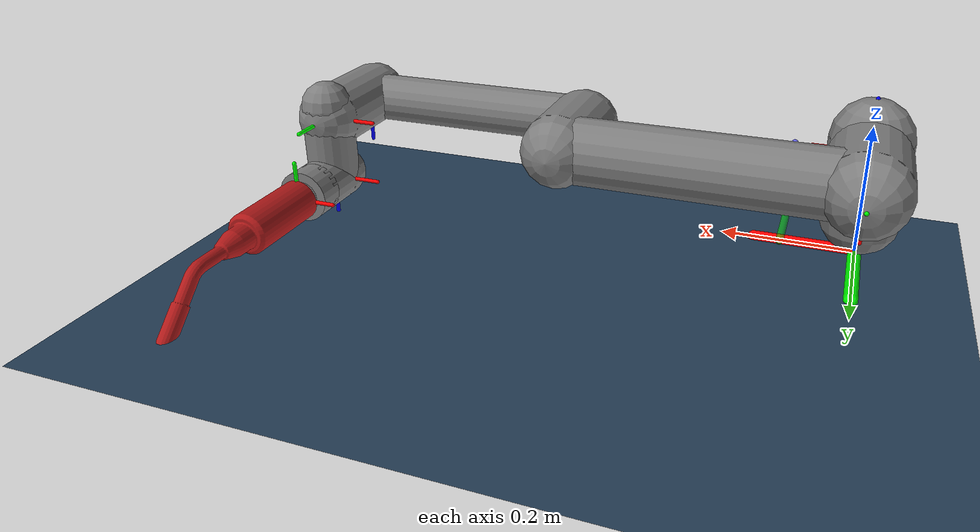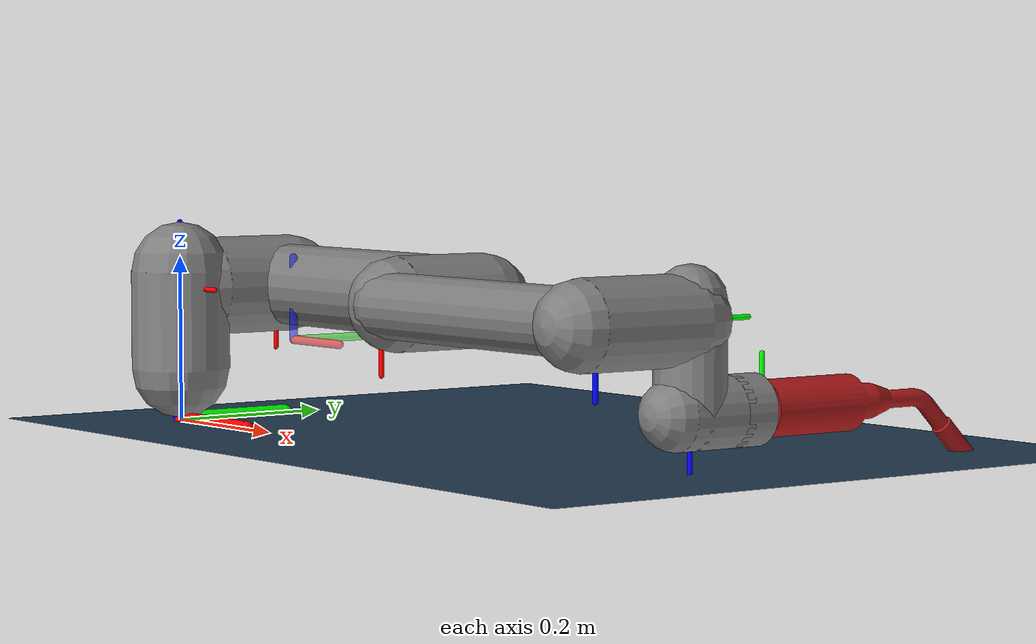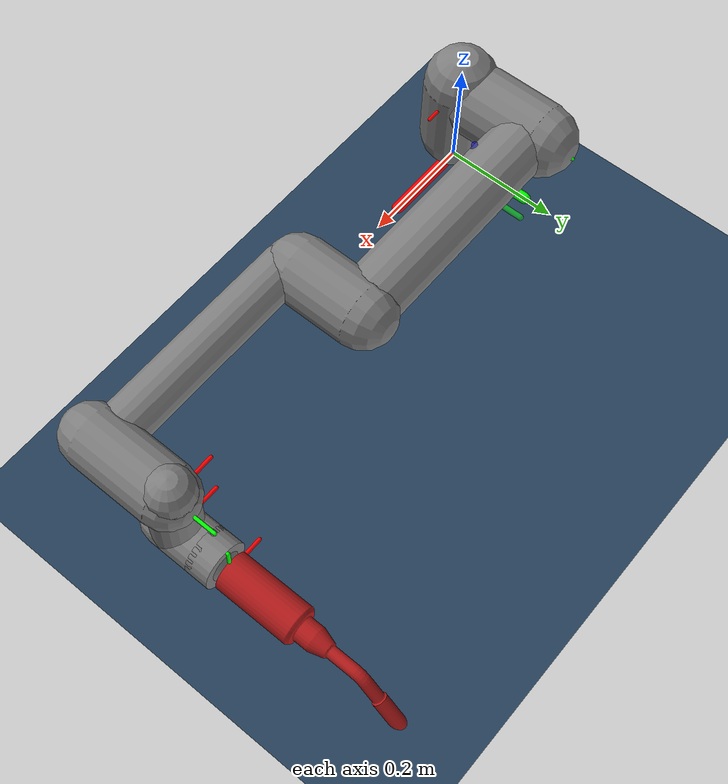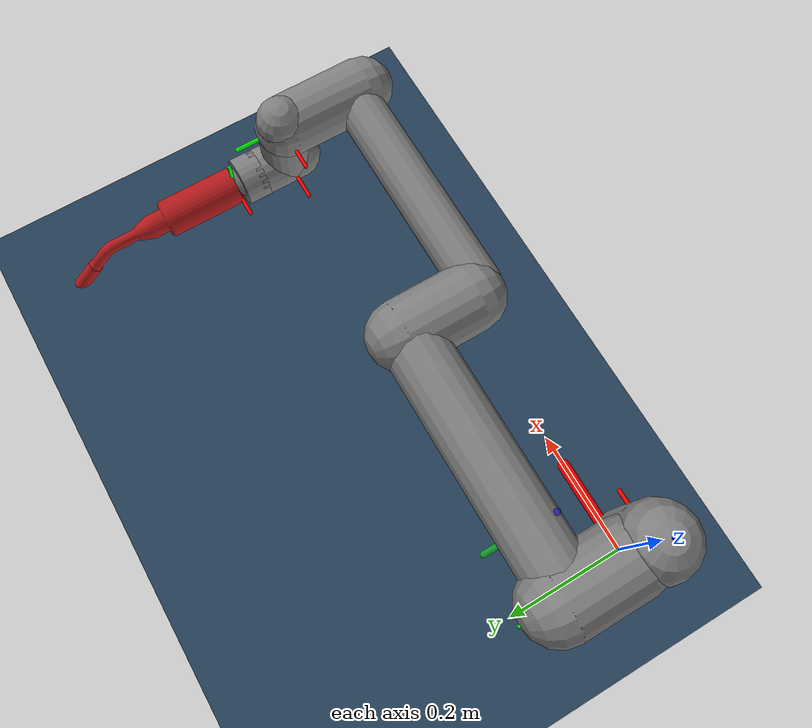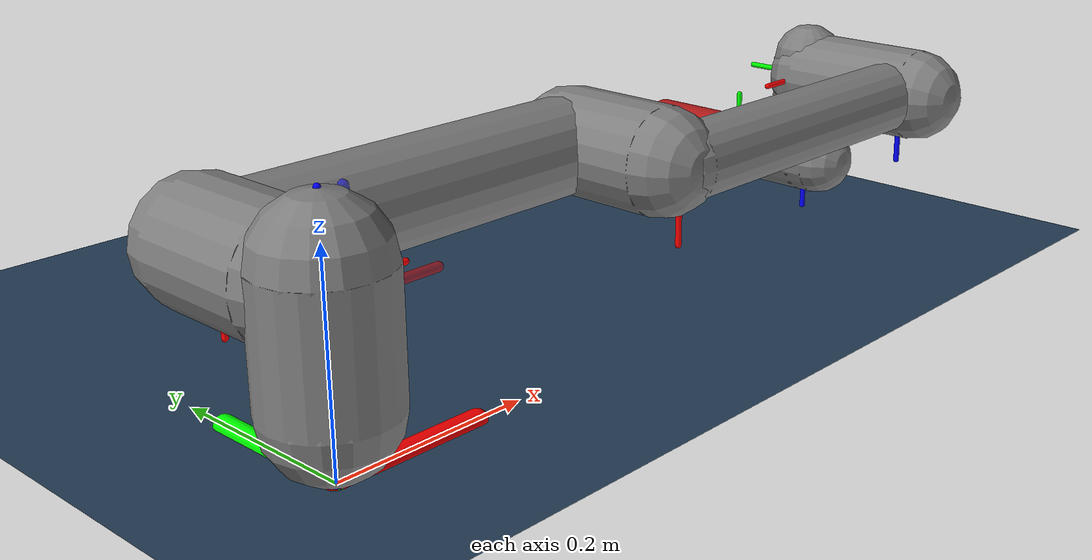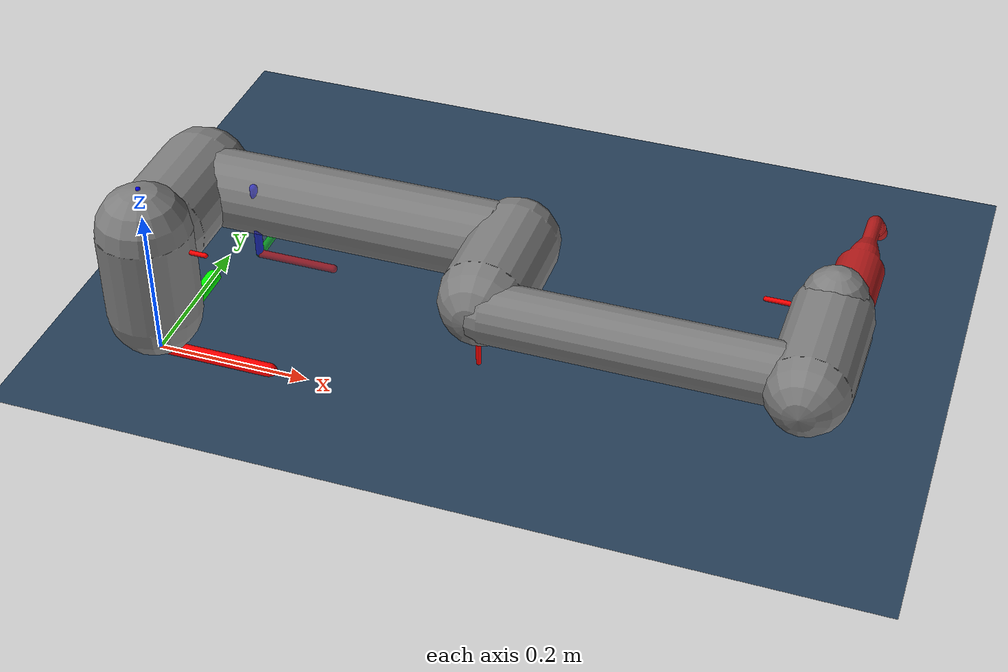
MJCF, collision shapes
<mujoco model="ur5e scene">
  <compiler angle="radian" meshdir="ur5e/assets" autolimits="true"/>
  <statistic center="0.3 0 0.4" extent="0.8"/>

  <visual>
    <headlight diffuse="0.6 0.6 0.6" ambient="0.1 0.1 0.1" specular="0 0 0"/>
    <rgba haze="0.15 0.25 0.35 1"/>
    <global azimuth="120" elevation="-20"/>
  </visual>

  <asset>
    <texture type="skybox" builtin="gradient" rgb1="0.3 0.5 0.7" rgb2="0 0 0" width="512" height="3072"/>
    <texture type="2d" name="groundplane" builtin="checker" mark="edge" rgb1="0.2 0.3 0.4" rgb2="0.1 0.2 0.3" markrgb="0.8 0.8 0.8" width="300" height="300"/>
    <material name="groundplane" texture="groundplane" texuniform="true" texrepeat="5 5" reflectance="0.2"/>
  <material class="ur5e" name="black" rgba="0.033 0.033 0.033 1"/>
    <material class="ur5e" name="jointgray" rgba="0.278 0.278 0.278 1"/>
    <material class="ur5e" name="linkgray" rgba="0.72 0.72 0.72 1"/>
    <material class="ur5e" name="urblue" rgba="0.49 0.678 0.8 1"/>

    <mesh file="base_0.obj"/>
    <mesh file="base_1.obj"/>
    <mesh file="shoulder_0.obj"/>
    <mesh file="shoulder_1.obj"/>
    <mesh file="shoulder_2.obj"/>
    <mesh file="upperarm_0.obj"/>
    <mesh file="upperarm_1.obj"/>
    <mesh file="upperarm_2.obj"/>
    <mesh file="upperarm_3.obj"/>
    <mesh file="forearm_0.obj"/>
    <mesh file="forearm_1.obj"/>
    <mesh file="forearm_2.obj"/>
    <mesh file="forearm_3.obj"/>
    <mesh file="wrist1_0.obj"/>
    <mesh file="wrist1_1.obj"/>
    <mesh file="wrist1_2.obj"/>
    <mesh file="wrist2_0.obj"/>
    <mesh file="wrist2_1.obj"/>
    <mesh file="wrist2_2.obj"/>
    <mesh file="wrist3.obj"/>
  <mesh name="tool_mesh" file="welding_gun.obj"/>
    <mesh name="welding_gun_collision_mesh" file="welding_gun.obj"/>
  </asset>

  <worldbody>
    <light pos="0 0 1.5" dir="0 0 -1" directional="true"/>
    <geom name="floor" size="0 0 0.05" type="plane" pos="0.0 0.0 0.0" material="groundplane"/>
    <!-- Definition of the world frame -->
    <body name="world_frame" pos="0.0 0.0 0.0">
        <geom name="world_x_axis" type="capsule" fromto="0 0 0 0.15 0 0" size="0.01" rgba="1 0 0 1" contype="0" conaffinity="0"/>
        <geom name="world_y_axis" type="capsule" fromto="0 0 0 0 0.15 0" size="0.01" rgba="0 1 0 1" contype="0" conaffinity="0"/>
        <geom name="world_z_axis" type="capsule" fromto="0 0 0 0 0 0.15" size="0.01" rgba="0 0 1 1" contype="0" conaffinity="0"/>
    </body>

    <!-- Optimization search space -->

  <light name="spotlight" mode="targetbodycom" target="wrist_2_link" pos="0 -1 2"/>

    <body name="base" pos="0 0 0.0" quat="1 0 0 0" childclass="ur5e">
      <inertial mass="4.0" pos="0 0 0" diaginertia="0.00443333156 0.00443333156 0.0072"/>
      <geom type="capsule" fromto="0 0 0 0.08 0 0" rgba="1 0 0 1" size="0.003" contype="0" conaffinity="0"/>
      <geom type="capsule" fromto="0 0 0 0 0.08 0" rgba="0 1 0 1" size="0.003" contype="0" conaffinity="0"/>
      <geom type="capsule" fromto="0 0 0 0 0 0.08" rgba="0 0 1 1" size="0.003" contype="0" conaffinity="0"/>
      <geom mesh="base_0" material="black" class="visual"/>
      <geom mesh="base_1" material="linkgray" class="visual"/>

      <!-- COM marker -->
      <geom name="base_com" type="sphere" pos="0.0 0.0 0.0" size="0.01" rgba="1 0 0 1" group="1" contype="0" conaffinity="0"/>

      <body name="shoulder_link" pos="0 0 0.163">
        <inertial mass="3.761" pos="0 0.00193 -0.02561" diaginertia="0.0067 0.0064 0.00666"/>
        <geom type="capsule" fromto="0 0 0 0.08 0 0" rgba="1 0 0 1" size="0.003" contype="0" conaffinity="0"/>
        <geom type="capsule" fromto="0 0 0 0 0.08 0" rgba="0 1 0 1" size="0.003" contype="0" conaffinity="0"/>
        <geom type="capsule" fromto="0 0 0 0 0 0.08" rgba="0 0 1 1" size="0.003" contype="0" conaffinity="0"/>
        <joint name="shoulder_pan_joint" class="size3" axis="0 0 1"/>
        <geom mesh="shoulder_0" material="urblue" class="visual"/>
        <geom mesh="shoulder_1" material="black" class="visual"/>
        <geom mesh="shoulder_2" material="jointgray" class="visual"/>
        <geom name="shoulder_collision" class="collision" size="0.06 0.06" pos="0 0 -0.04"/>

        <!-- COM marker -->
        <geom name="shoulder_link_com" type="sphere" pos="0.0 0.00193 -0.02561" size="0.01" rgba="1 0 0 1" group="1" contype="0" conaffinity="0"/>

        <body name="upper_arm_link" pos="0 0.138 0" quat="1 0 1 0">
          <inertial mass="8.058" pos="0.0 -0.01464 0.2125" diaginertia="0.0149 0.3564 0.3553"/>
          <geom type="capsule" fromto="0 0 0 0.08 0 0" rgba="1 0 0 1" size="0.003" contype="0" conaffinity="0"/>
          <geom type="capsule" fromto="0 0 0 0 0.08 0" rgba="0 1 0 1" size="0.003" contype="0" conaffinity="0"/>
          <geom type="capsule" fromto="0 0 0 0 0 0.08" rgba="0 0 1 1" size="0.003" contype="0" conaffinity="0"/>
          <joint name="shoulder_lift_joint" class="size3"/>
          <geom mesh="upperarm_0" material="linkgray" class="visual"/>
          <geom mesh="upperarm_1" material="black" class="visual"/>
          <geom mesh="upperarm_2" material="jointgray" class="visual"/>
          <geom mesh="upperarm_3" material="urblue" class="visual"/>
          <geom name="upper_arm_collision_outer" class="collision" pos="0 -0.04 0" quat="1 1 0 0" size="0.06 0.06"/>
          <geom name="upper_arm_collision_inner" class="collision" size="0.05 0.2" pos="0 0 0.2"/>

          <!-- COM marker -->
          <geom name="upper_arm_com" type="sphere" pos="0.0 -0.01464 0.2125" size="0.01" rgba="1 0 0 1" group="1" contype="0" conaffinity="0"/>

          <body name="forearm_link" pos="0 -0.131 0.425">
            <inertial mass="2.846" pos="0.0 0.0155 0.1922" diaginertia="0.0025 0.0551 0.0546"/>
            <geom type="capsule" fromto="0 0 0 0.08 0 0" rgba="1 0 0 1" size="0.003" contype="0" conaffinity="0"/>
            <geom type="capsule" fromto="0 0 0 0 0.08 0" rgba="0 1 0 1" size="0.003" contype="0" conaffinity="0"/>
            <geom type="capsule" fromto="0 0 0 0 0 0.08" rgba="0 0 1 1" size="0.003" contype="0" conaffinity="0"/>
            <joint name="elbow_joint" class="size3_limited"/>
            <geom mesh="forearm_0" material="urblue" class="visual"/>
            <geom mesh="forearm_1" material="linkgray" class="visual"/>
            <geom mesh="forearm_2" material="black" class="visual"/>
            <geom mesh="forearm_3" material="jointgray" class="visual"/>
            <geom name="forearm_collision_outer" class="collision" pos="0 0.08 0" quat="1 1 0 0" size="0.055 0.06"/>
            <geom name="forearm_collision_inner" class="collision" size="0.038 0.19" pos="0 0 0.2"/>

            <!-- COM marker -->
            <geom name="forearm_com" type="sphere" pos="0.0 0.0155 0.1922" size="0.01" rgba="1 0 0 1" group="1" contype="0" conaffinity="0"/>

            <body name="wrist_1_link" pos="0 0 0.392" quat="1 0 1 0">
              <inertial mass="1.37" pos="0.0 0.11 0.03" diaginertia="0.0012 0.0012 0.0009"/>
              <geom type="capsule" fromto="0 0 0 0.08 0 0" rgba="1 0 0 1" size="0.003" contype="0" conaffinity="0"/>
              <geom type="capsule" fromto="0 0 0 0 0.08 0" rgba="0 1 0 1" size="0.003" contype="0" conaffinity="0"/>
              <geom type="capsule" fromto="0 0 0 0 0 0.08" rgba="0 0 1 1" size="0.003" contype="0" conaffinity="0"/>
              <joint name="wrist_1_joint" class="size1"/>
              <geom mesh="wrist1_0" material="black" class="visual"/>
              <geom mesh="wrist1_1" material="urblue" class="visual"/>
              <geom mesh="wrist1_2" material="jointgray" class="visual"/>
              <geom name="wrist_1_collision" class="collision" pos="0 0.05 0" quat="1 1 0 0" size="0.05 0.07"/>

              <!-- COM marker -->
              <geom name="wrist_1_com" type="sphere" pos="0.0 0.11 0.03" size="0.01" rgba="1 0 0 1" group="1" contype="0" conaffinity="0"/>

              <body name="wrist_2_link" pos="0 0.127 0">
                <inertial mass="1.3" pos="0.0 0.02 0.09" diaginertia="0.0012 0.0012 0.0009"/>
                <geom type="capsule" fromto="0 0 0 0.08 0 0" rgba="1 0 0 1" size="0.003" contype="0" conaffinity="0"/>
                <geom type="capsule" fromto="0 0 0 0 0.08 0" rgba="0 1 0 1" size="0.003" contype="0" conaffinity="0"/>
                <geom type="capsule" fromto="0 0 0 0 0 0.08" rgba="0 0 1 1" size="0.003" contype="0" conaffinity="0"/>
                <joint name="wrist_2_joint" axis="0 0 1" class="size1"/>
                <geom mesh="wrist2_0" material="black" class="visual"/>
                <geom mesh="wrist2_1" material="urblue" class="visual"/>
                <geom mesh="wrist2_2" material="jointgray" class="visual"/>
                <geom name="wrist_2_collision_lower" class="collision" size="0.04 0.06" pos="0 0 0.04"/>
                <geom name="wrist_2_collision_upper" class="collision" pos="0 0.02 0.1" quat="1 1 0 0" size="0.04 0.04"/>

                <!-- COM marker -->
                <geom name="wrist_2_com" type="sphere" pos="0.0 0.02 0.09" size="0.01" rgba="1 0 0 1" group="1" contype="0" conaffinity="0"/>

                <body name="wrist_3_link" pos="0 0 0.1">
                  <inertial mass="0.365" pos="0.0 0.07 0.0" quat="1 0 0 1" diaginertia="0.001 0.001 0.001"/>
                  <geom type="capsule" fromto="0 0 0 0.08 0 0" rgba="1 0 0 1" size="0.003" contype="0" conaffinity="0"/>
                  <geom type="capsule" fromto="0 0 0 0 0.08 0" rgba="0 1 0 1" size="0.003" contype="0" conaffinity="0"/>
                  <geom type="capsule" fromto="0 0 0 0 0 0.08" rgba="0 0 1 1" size="0.003" contype="0" conaffinity="0"/>
                  <joint name="wrist_3_joint" class="size1"/>
                  <geom material="linkgray" mesh="wrist3" class="visual"/>
                  <geom name="wrist_3_collision" class="eef_collision" pos="0 0.07 0" quat="1 1 0 0" size="0.04 0.02"/>

                  <!-- COM marker -->
                  <geom name="wrist_3_com" type="sphere" pos="0.0 0.07 0.0" size="0.01" rgba="1 0 0 1" group="1" contype="0" conaffinity="0"/>

                  <site name="ee_site" pos="0 0.1 0" quat="0.7071 -0.7071 0 0"/>

                  <!-- Replace tool frames with Hande gripper -->
                  <body name="ee_frame_visual_only" pos="0 0.1 0" quat="0.7071 -0.7071 0 0">
                    <geom type="capsule" fromto="0 0 0 0.05 0 0" rgba="1 0 0 1" size="0.002"/>
                    <geom type="capsule" fromto="0 0 0 0 0.05 0" rgba="0 1 0 1" size="0.002"/>
                    <geom type="capsule" fromto="0 0 0 0 0 0.05" rgba="0 0 1 1" size="0.002"/>

                    <!-- 'Movable frame' inside the gripper fingers -->
                    <body name="tool_frame" pos="0 0 0.0" quat="1 0 0 0">
                      <site name="tool_site" pos="0 0.0 0.0" quat="1 0 0 0"/>
                      <geom type="capsule" fromto="0 0 0 0.06 0 0" rgba="1 0 0 1" size="0.003" contype="0" conaffinity="0"/>
                      <geom type="capsule" fromto="0 0 0 0 0.06 0" rgba="0 1 0 1" size="0.003" contype="0" conaffinity="0"/>
                      <geom type="capsule" fromto="0 0 0 0 0 0.06" rgba="0 0 1 1" size="0.003" contype="0" conaffinity="0"/>
                    </body>
                  <body name="tool_base" pos="0 0 0">
      <inertial mass="0.752" pos="0 -0.070 0.028" diaginertia="0.0143 0.0143 0.0016"/>
      <geom type="mesh" mesh="tool_mesh" rgba="0.6 0.6 0.6 1" contype="0" conaffinity="0" group="0"/>
      <!-- collision cylinder -->
      <geom name="welding_gun_collision" type="mesh" mesh="welding_gun_collision_mesh" pos="0 0 0.0" rgba="0.7 0.1 0.1 0.3" contype="1" conaffinity="1" group="3"/>
      <!-- Marker (red sphere) to specify the origin -->
      <site name="mount_site" pos="0 0 0" size="0.005" rgba="1 0 0 1"/>
      <!-- Marker (green sphere) to specify the point of application of the weight -->
    </body>
  </body>
                </body>
              </body>
            </body>
          </body>
        </body>
      </body>
    </body>
  <body name="reference_target_1" pos="0.1 0.1 0.1"><geom name="reference_x_axis1" type="capsule" fromto="0 0 0 0.1 0 0" size="0.005" rgba="1 0 0 0.5" contype="0" conaffinity="0"/><geom name="reference_y_axis1" type="capsule" fromto="0 0 0 0 0.1 0" size="0.005" rgba="0 1 0 0.5" contype="0" conaffinity="0"/><geom name="reference_z_axis1" type="capsule" fromto="0 0 0 0 0 0.1" size="0.005" rgba="0 0 1 0.5" contype="0" conaffinity="0"/></body></worldbody>

<default><default class="ur5e">
      <material specular="0.5" shininess="0.25"/>
      <joint axis="0 1 0" range="-6.28319 6.28319" armature="0.1"/>
      <general gaintype="fixed" biastype="affine" ctrlrange="-6.2831 6.2831" gainprm="2000" biasprm="0 -2000 -400" forcerange="-150 150"/>
      <default class="size3">
        <default class="size3_limited">
          <joint range="-6.28319 6.28319"/>
          <general ctrlrange="-6.28319 6.28319"/>
        </default>
      </default>
      <default class="size1">
        <general gainprm="500" biasprm="0 -500 -100" forcerange="-28 28"/>
      </default>
      <default class="visual">
        <geom type="mesh" contype="0" conaffinity="0" group="2"/>
      </default>
      <default class="collision">
        <geom type="capsule" group="3"/>
        <default class="eef_collision">
          <geom type="cylinder"/>
        </default>
      </default>
      <site size="0.001" rgba="0.5 0.5 0.5 0.3" group="4"/>
    </default>
  </default><actuator><motor joint="shoulder_pan_joint" gear="1"/>
    <motor joint="shoulder_lift_joint" gear="1"/>
    <motor joint="elbow_joint" gear="1"/>
    <motor joint="wrist_1_joint" gear="1"/>
    <motor joint="wrist_2_joint" gear="1"/>
    <motor joint="wrist_3_joint" gear="1"/>
  </actuator></mujoco>
